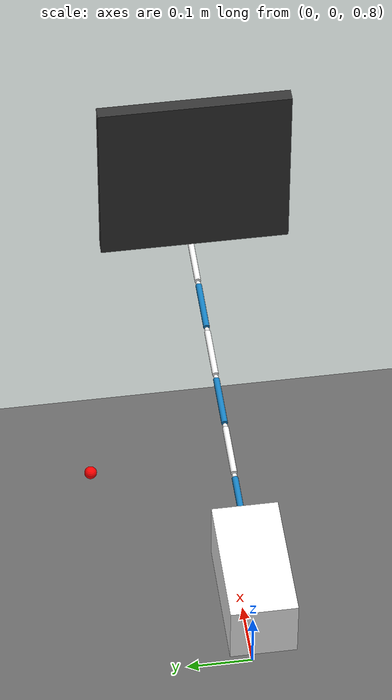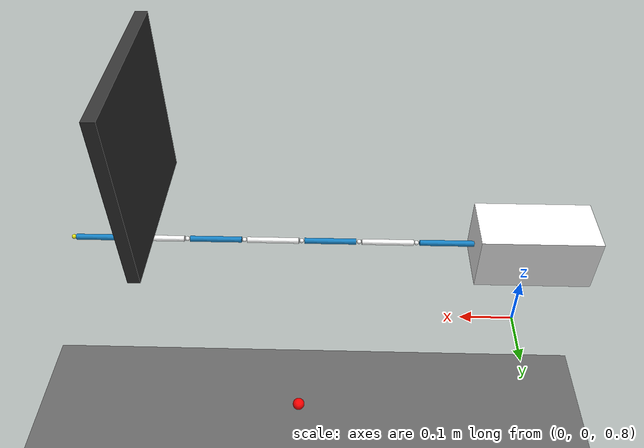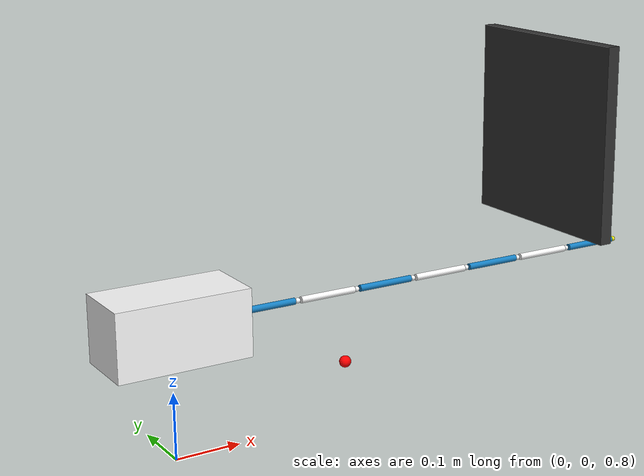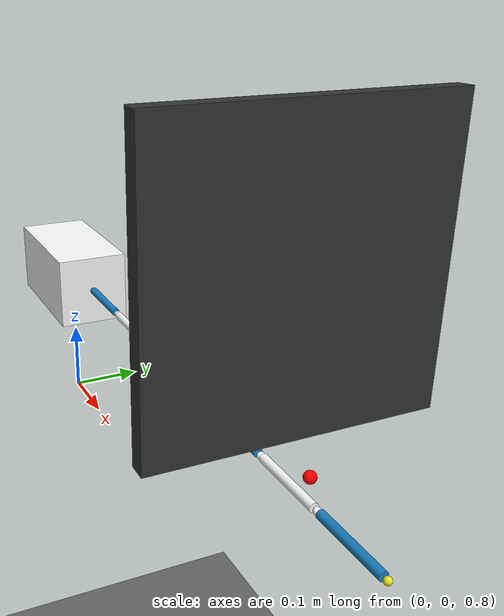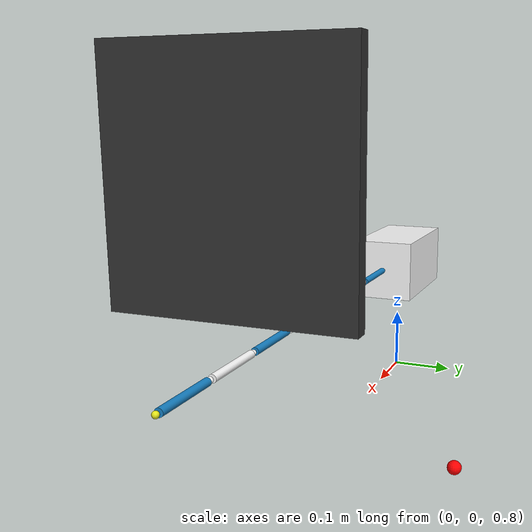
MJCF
<?xml version="1.0" encoding="utf-8"?>
<mujoco>
	<compiler angle="degree" coordinate="local" meshdir="./stls" texturedir="./textures"></compiler>
	<option timestep="0.002" gravity="0 0 0">
		<flag warmstart="enable"></flag>

	</option>

	<include file="mani_share.xml"></include>

	<worldbody>
		<geom name="floor0" pos="0.6 0 0" size="1 0.5 0.5" type="plane" condim="3" material="floor_mat"></geom>
		<body name="floor0" pos="0 0 0">
			<site name="target0" pos="0.4 0.2 0.8" size="0.01 0.01 0.01" rgba="1 0 0 1" type="sphere"></site>
		</body>

		<include file="mani_6.xml"></include>
        <body name="block0" pos="0.65 0 1.2">
			<geom name="block0" size="0.01 0.15 0.15" type="box" material="block_mat" mass="1"></geom>
		</body>

		<light directional="true" ambient="0.2 0.2 0.2" diffuse="0.8 0.8 0.8" specular="0.3 0.3 0.3" castshadow="false" pos="0 0 4" dir="0 0 -1" name="light0"></light>
	</worldbody>

	<actuator>
		<velocity joint="robot0:joint1"/>
		<velocity joint="robot0:joint2"/>
		<velocity joint="robot0:joint3"/>
		<velocity joint="robot0:joint4"/>
		<velocity joint="robot0:joint5"/>
		<velocity joint="robot0:joint6"/>
		<velocity joint="robot0:joint7"/>
		<velocity joint="robot0:joint8"/>
		<velocity joint="robot0:joint9"/>
		<velocity joint="robot0:joint10"/>
		<velocity joint="robot0:joint11"/>
		<velocity joint="robot0:joint12"/>
	</actuator>
</mujoco>

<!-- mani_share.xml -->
<mujoco>
    <asset>
        <texture type="skybox" builtin="gradient" rgb1="0.44 0.85 0.56" rgb2="0.46 0.87 0.58" width="32" height="32"></texture>
        <texture name="texture_block" file="block.png" gridsize="3 4" gridlayout=".U..LFRB.D.."></texture>

        <material name="floor_mat" specular="0" shininess="0.5" reflectance="0" rgba="0.4 0.4 0.4 1"></material>
        <material name="table_mat" specular="0" shininess="0.5" reflectance="0" rgba="0.93 0.93 0.93 1"></material>
        <material name="block_mat" specular="0" shininess="0.5" reflectance="0" rgba="0.2 0.2 0.2 1"></material>
        <material name="puck_mat" specular="0" shininess="0.5" reflectance="0" rgba="0.2 0.2 0.2 1"></material>
        <material name="robot0:geomMat" shininess="0.03" specular="0.4"></material>
        <material name="robot0:gripper_finger_mat" shininess="0.03" specular="0.4" reflectance="0"></material>
        <material name="robot0:gripper_mat" shininess="0.03" specular="0.4" reflectance="0"></material>
        <material name="robot0:arm_mat" shininess="0.03" specular="0.4" reflectance="0"></material>
        <material name="robot0:head_mat" shininess="0.03" specular="0.4" reflectance="0"></material>
        <material name="robot0:torso_mat" shininess="0.03" specular="0.4" reflectance="0"></material>
        <material name="robot0:base_mat" shininess="0.03" specular="0.4" reflectance="0"></material>
        <mesh file="hole0.stl" name="robot0:hole0"></mesh>
    </asset>

    <default>
        <default class="robot0:fetch">
            <geom margin="0.001" material="robot0:geomMat" rgba="1 1 1 1" solimp="0.99 0.99 0.01" solref="0.01 1" type="mesh" user="0"></geom>
            <joint armature="1" damping="50" frictionloss="0" stiffness="0"></joint>
            <default class="robot0:grey">
                <geom rgba="0.356 0.361 0.376 1.0"></geom>
            </default>
            <default class="robot0:blue">
                <geom rgba="0.086 0.506 0.767 1.0"></geom>
            </default>
            <default class="robot0:yellow">
                <geom rgba="0.9 0.9 0.1 1.0"></geom>
            </default>
        </default>
    </default>
</mujoco>

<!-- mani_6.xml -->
<mujoco>
	<body childclass="robot0:fetch" name="robot0:base" pos="0 0 1">
		<geom size="0.1 0.05 0.05" type="box" mass="0.002" material="table_mat"></geom>
		<body name="robot0:link0" pos="0.1475 0 0">
			<geom size="0.005 0.047" euler="0 90 0" type="cylinder" material="robot0:arm_mat" mass="0.1" class="robot0:blue"></geom>
			<body name="robot0:middle0" pos="0.0525 0 0">
				<geom size="0.004 0.004 0.004" type="sphere" material="robot0:arm_mat" mass="0.1"></geom>
				<joint axis="0 0 1"  pos="0 0 0" name="robot0:joint1" range="-90 90"></joint>
				<body name="robot0:link1" pos="0.05 0 0">
					<geom size="0.005 0.045" euler="0 90 0" type="cylinder" material="robot0:arm_mat" mass="0.1"></geom>
					<joint axis="0 1 0"  pos="-0.05 0 0" name="robot0:joint2" range="-90 90"></joint>
					<body name="robot0:middle1" pos="0.05 0 0">
						<geom size="0.004 0.004 0.004" type="sphere" material="robot0:arm_mat"></geom>
						<joint axis="0 0 1"  pos="0 0 0" name="robot0:joint3" range="-90 90"></joint>
						<body name="robot0:link2" pos="0.05 0 0">
							<geom size="0.005 0.045" euler="0 90 0" type="cylinder" material="robot0:arm_mat" mass="0.1" class="robot0:blue"></geom>
							<joint axis="0 1 0"  pos="-0.05 0 0" name="robot0:joint4" range="-90 90"></joint>
							<body name="robot0:middle2" pos="0.05 0 0">
								<geom size="0.004 0.004 0.004" type="sphere" material="robot0:arm_mat" mass="0.1"></geom>
								<joint axis="0 0 1"  pos="0 0 0" name="robot0:joint5" range="-90 90"></joint>
								<body name="robot0:link3" pos="0.05 0 0">
									<geom size="0.005 0.045" euler="0 90 0" type="cylinder" material="robot0:arm_mat" mass="0.1"></geom>
									<joint axis="0 1 0"  pos="-0.05 0 0" name="robot0:joint6" range="-90 90"></joint>
									<body name="robot0:middle3" pos="0.05 0 0">
										<geom size="0.004 0.004 0.004" type="sphere" material="robot0:arm_mat" mass="0.1"></geom>
										<joint axis="0 0 1"  pos="0 0 0" name="robot0:joint7" range="-90 90"></joint>
										<body name="robot0:link4" pos="0.05 0 0">
											<geom size="0.005 0.045" euler="0 90 0" type="cylinder" material="robot0:arm_mat" mass="0.1" class="robot0:blue"></geom>
											<joint axis="0 1 0"  pos="-0.05 0 0" name="robot0:joint8" range="-90 90"></joint>
											<body name="robot0:middle4" pos="0.05 0 0">
												<geom size="0.004 0.004 0.004" type="sphere" material="robot0:arm_mat" mass="0.1"></geom>
												<joint axis="0 0 1"  pos="0 0 0" name="robot0:joint9" range="-90 90"></joint>
												<body name="robot0:link5" pos="0.05 0 0">
													<geom size="0.005 0.045" euler="0 90 0" type="cylinder" material="robot0:arm_mat" mass="0.1"></geom>
													<joint axis="0 1 0"  pos="-0.05 0 0" name="robot0:joint10" range="-90 90"></joint>
													<body name="robot0:middle5" pos="0.05 0 0">
														<geom size="0.004 0.004 0.004" type="sphere" material="robot0:arm_mat" mass="0.1"></geom>
														<joint axis="0 0 1"  pos="0 0 0" name="robot0:joint11" range="-90 90"></joint>
														<body name="robot0:link6" pos="0.05 0 0">
															<geom size="0.005 0.045" euler="0 90 0" type="cylinder" material="robot0:arm_mat" mass="0.1" class="robot0:blue"></geom>
															<joint axis="0 1 0"  pos="-0.05 0 0" name="robot0:joint12" range="-90 90"></joint>
																<body  name="robot0:middle6" pos="0.05 0 0">
																	<geom  size="0.004 0.004 0.004" type="sphere" material="robot0:arm_mat" mass="0.1" class="robot0:yellow"></geom>
																	<site name="robot0:tip" pos="0 0 0" rgba="0 0 0 0" size="0.004 0.004 0.004"></site>
																</body>
														</body>
													</body>
												</body>
											</body>
										</body>
									</body>
								</body>
							</body>
						</body>
					</body>
				</body>
			</body>
		</body>
	</body>
</mujoco>
